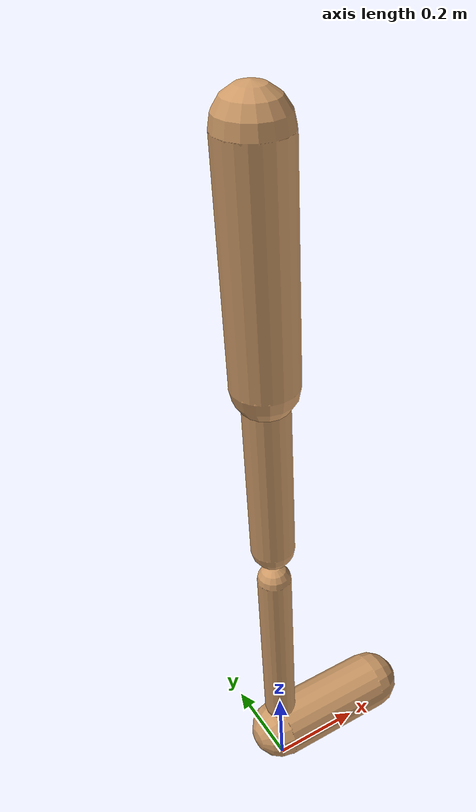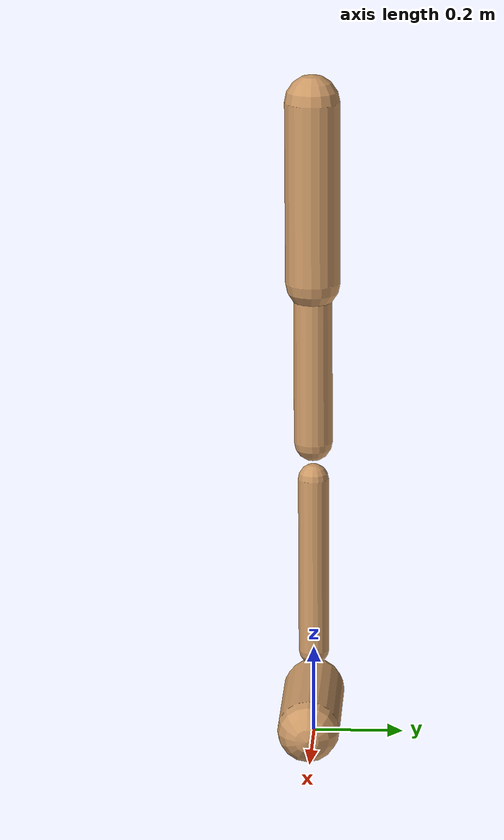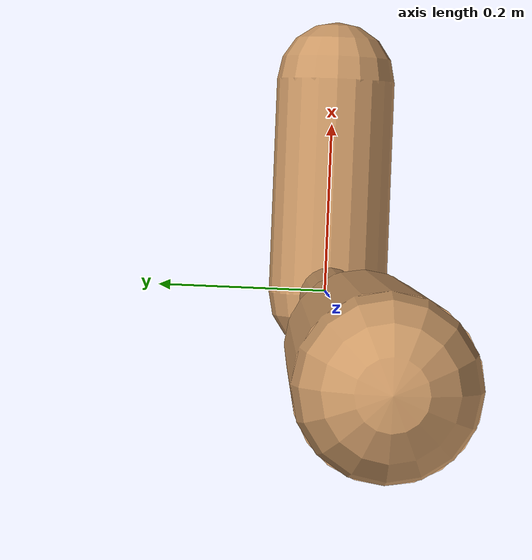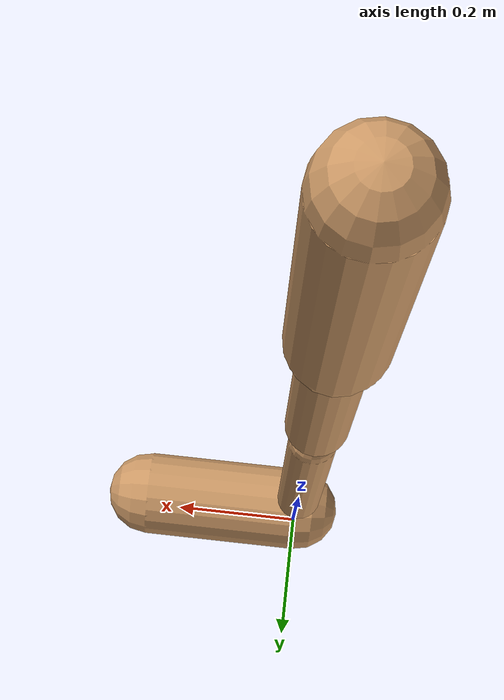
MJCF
<mujoco model="walker2d">
  <compiler angle="degree" coordinate="global" inertiafromgeom="true" />
  <default>
    <joint armature="0.01" damping=".1" limited="true" />
    <geom conaffinity="0" condim="3" contype="1" density="1000" friction="0.8 .1 .1" rgba="0.8 0.6 .4 1" />
  </default>
  <option integrator="RK4" timestep="0.002" />
  <worldbody>

    <body name="torso" pos="0 0 -0.1810476950683069">
      <joint armature="0" axis="1 0 0" damping="0" limited="false" name="ignorex" pos="0 0 0" stiffness="0" type="slide" />
      <joint armature="0" axis="0 0 1" damping="0" limited="false" name="ignorez" pos="0 0 0" ref="1.25" stiffness="0" type="slide" />
      <joint armature="0" axis="0 1 0" damping="0" limited="false" name="ignorey" pos="0 0 0" stiffness="0" type="hinge" />
      <geom fromto="0 0 1.45 0 0 1.05" name="torso_geom" size="0.06020805286967948" type="capsule" />
      <body name="thigh">
        <joint axis="0 -1 0" name="thigh_joint" pos="0 0 1.05" range="-150 0" type="hinge" />
        <geom fromto="0.0 0.0 1.05 0.0 0.0 0.68575943450604" name="thigh_geom" size="0.04250525415632883" type="capsule" />
        <body name="leg" pos="0.0 0.0 0.08575943450604007">
          <joint axis="0 -1 0" name="leg_joint" pos="0 0 0.6" range="-150 0" type="hinge" />
          <geom fromto="0.0 0.0 0.6 0.0 0.0 0.19528826056226678" name="leg_geom" size="0.034004203325063063" type="capsule" />
          <body name="foot" pos="0.0 0.0 0.09528826056226677">
            <joint axis="0 -1 0" name="foot_joint" pos="0 0 0.1" range="-45 45" type="hinge" />
            <geom fromto="-0.0 0.0 0.1 0.24776059985708457 0.0 0.1" name="foot_geom" size="0.06812609324716733" type="capsule" />
          </body>
        </body>
      </body>

      <body name="thigh_left">
        <joint axis="0 -1 0" name="thigh_left_joint" pos="0 0 1.05" range="-150 0" type="hinge" />
        <geom fromto="0.0 0.0 1.05 0.0 0.0 0.68575943450604" name="thigh_left_geom" rgba=".7 .3 .6 1" size="0.04250525415632883" type="capsule" />
        <body name="leg_left" pos="0.0 0.0 0.08575943450604007">
          <joint axis="0 -1 0" name="leg_left_joint" pos="0 0 0.6" range="-150 0" type="hinge" />
          <geom fromto="0.0 0.0 0.6 0.0 0.0 0.19528826056226678" name="leg_left_geom" rgba=".7 .3 .6 1" size="0.034004203325063063" type="capsule" />
          <body name="foot_left" pos="0.0 0.0 0.09528826056226677">
            <joint axis="0 -1 0" name="foot_left_joint" pos="0 0 0.1" range="-45 45" type="hinge" />
            <geom fromto="-0.0 0.0 0.1 0.24776059985708457 0.0 0.1" name="foot_left_geom" rgba=".7 .3 .6 1" size="0.06812609324716733" type="capsule" />
          </body>
        </body>
      </body>
    </body>
  </worldbody>
  <actuator>

    <motor ctrllimited="true" ctrlrange="-1.0 1.0" gear="100" joint="thigh_joint" />
    <motor ctrllimited="true" ctrlrange="-1.0 1.0" gear="100" joint="leg_joint" />
    <motor ctrllimited="true" ctrlrange="-1.0 1.0" gear="100" joint="foot_joint" />
    <motor ctrllimited="true" ctrlrange="-1.0 1.0" gear="100" joint="thigh_left_joint" />
    <motor ctrllimited="true" ctrlrange="-1.0 1.0" gear="100" joint="leg_left_joint" />
    <motor ctrllimited="true" ctrlrange="-1.0 1.0" gear="100" joint="foot_left_joint" />

  </actuator>
</mujoco>
